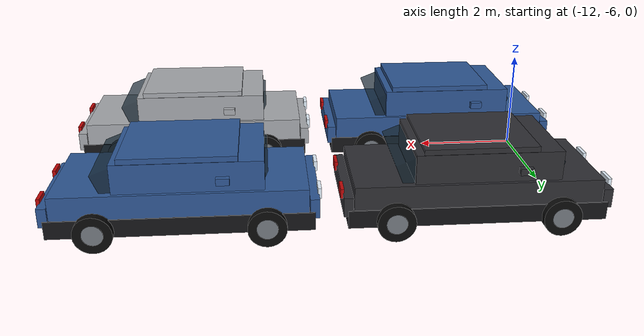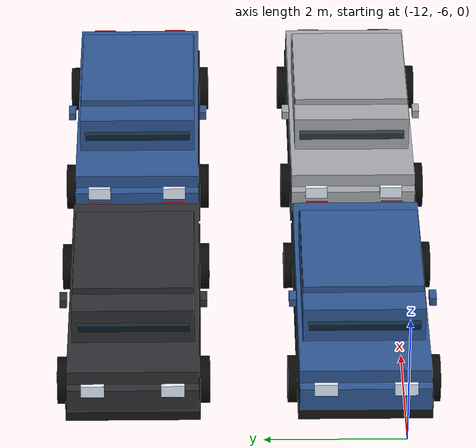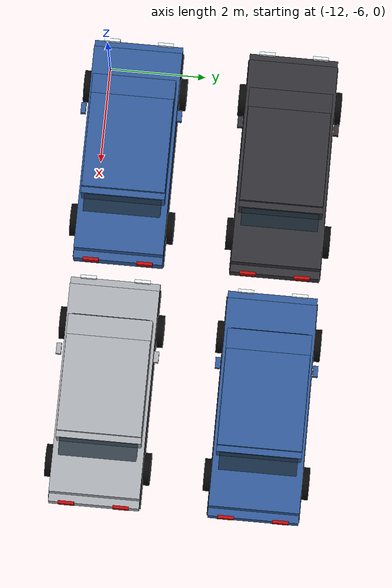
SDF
<sdf version="1.7">
 <world name="ev_car_carrier_deck_world">
  <model name="ev_01">
   <static>true</static>
   <pose>-10.0000 -5.4000 0.2000 0.0000 0.0000 0.0000</pose>
   <link name="vehicle">
    <collision name="chassis_collision">
     <pose>0.0000 0.0000 0.4800 0.0000 0.0000 0.0000</pose>
     <geometry><box><size>4.45 1.86 0.32</size></box></geometry>
    </collision>
    <visual name="chassis_visual">
     <pose>0.0000 0.0000 0.4800 0.0000 0.0000 0.0000</pose>
     <geometry><box><size>4.45 1.86 0.32</size></box></geometry>
     <material><ambient>0.08 0.08 0.09 1</ambient><diffuse>0.08 0.08 0.09 1</diffuse></material>
    </visual>
    <collision name="lower_body_collision">
     <pose>0.0000 0.0000 0.7800 0.0000 0.0000 0.0000</pose>
     <geometry><box><size>4.25 1.82 0.55</size></box></geometry>
    </collision>
    <visual name="lower_body_visual">
     <pose>0.0000 0.0000 0.7800 0.0000 0.0000 0.0000</pose>
     <geometry><box><size>4.25 1.82 0.55</size></box></geometry>
     <material><ambient>0.18 0.34 0.58 1</ambient><diffuse>0.18 0.34 0.58 1</diffuse></material>
    </visual>
    <collision name="cabin_collision">
     <pose>-0.1500 0.0000 1.2500 0.0000 0.0000 0.0000</pose>
     <geometry><box><size>2.5 1.7 0.65</size></box></geometry>
    </collision>
    <visual name="cabin_visual">
     <pose>-0.1500 0.0000 1.2500 0.0000 0.0000 0.0000</pose>
     <geometry><box><size>2.5 1.7 0.65</size></box></geometry>
     <material><ambient>0.18 0.34 0.58 1</ambient><diffuse>0.18 0.34 0.58 1</diffuse></material>
    </visual>
    <visual name="windshield_visual">
     <pose>-1.0500 0.0000 1.3000 0.0000 -0.4000 0.0000</pose>
     <geometry><box><size>0.7 1.56 0.42</size></box></geometry>
     <material><ambient>0.1 0.17 0.22 0.75</ambient><diffuse>0.1 0.17 0.22 0.75</diffuse></material>
    </visual>
    <visual name="rear_glass_visual">
     <pose>1.1000 0.0000 1.2800 0.0000 0.3800 0.0000</pose>
     <geometry><box><size>0.55 1.56 0.4</size></box></geometry>
     <material><ambient>0.1 0.17 0.22 0.75</ambient><diffuse>0.1 0.17 0.22 0.75</diffuse></material>
    </visual>
    <collision name="roof_collision">
     <pose>0.0000 0.0000 1.6200 0.0000 0.0000 0.0000</pose>
     <geometry><box><size>1.95 1.68 0.1</size></box></geometry>
    </collision>
    <visual name="roof_visual">
     <pose>0.0000 0.0000 1.6200 0.0000 0.0000 0.0000</pose>
     <geometry><box><size>1.95 1.68 0.1</size></box></geometry>
     <material><ambient>0.18 0.34 0.58 1</ambient><diffuse>0.18 0.34 0.58 1</diffuse></material>
    </visual>
    <collision name="battery_pack_collision">
     <pose>0.1000 0.0000 0.3000 0.0000 0.0000 0.0000</pose>
     <geometry><box><size>2.75 1.45 0.16</size></box></geometry>
    </collision>
    <visual name="battery_pack_visual">
     <pose>0.1000 0.0000 0.3000 0.0000 0.0000 0.0000</pose>
     <geometry><box><size>2.75 1.45 0.16</size></box></geometry>
     <material><ambient>0.16 0.18 0.19 1</ambient><diffuse>0.16 0.18 0.19 1</diffuse></material>
    </visual>
    <collision name="front_bumper_collision">
     <pose>-2.2200 0.0000 0.7000 0.0000 0.0000 0.0000</pose>
     <geometry><box><size>0.16 1.82 0.34</size></box></geometry>
    </collision>
    <visual name="front_bumper_visual">
     <pose>-2.2200 0.0000 0.7000 0.0000 0.0000 0.0000</pose>
     <geometry><box><size>0.16 1.82 0.34</size></box></geometry>
     <material><ambient>0.18 0.34 0.58 1</ambient><diffuse>0.18 0.34 0.58 1</diffuse></material>
    </visual>
    <collision name="rear_bumper_collision">
     <pose>2.2200 0.0000 0.7000 0.0000 0.0000 0.0000</pose>
     <geometry><box><size>0.16 1.82 0.34</size></box></geometry>
    </collision>
    <visual name="rear_bumper_visual">
     <pose>2.2200 0.0000 0.7000 0.0000 0.0000 0.0000</pose>
     <geometry><box><size>0.16 1.82 0.34</size></box></geometry>
     <material><ambient>0.18 0.34 0.58 1</ambient><diffuse>0.18 0.34 0.58 1</diffuse></material>
    </visual>
    <collision name="wheel_0_0_collision">
     <pose>-1.4200 -0.9600 0.4300 1.5708 0.0000 0.0000</pose>
     <geometry><cylinder><radius>0.33</radius><length>0.2</length></cylinder></geometry>
    </collision>
    <visual name="wheel_0_0_visual">
     <pose>-1.4200 -0.9600 0.4300 1.5708 0.0000 0.0000</pose>
     <geometry><cylinder><radius>0.33</radius><length>0.2</length></cylinder></geometry>
     <material><ambient>0.035 0.035 0.035 1</ambient><diffuse>0.035 0.035 0.035 1</diffuse></material>
    </visual>
    <visual name="rim_0_0_visual">
     <pose>-1.4200 -0.9600 0.4300 1.5708 0.0000 0.0000</pose>
     <geometry><cylinder><radius>0.18</radius><length>0.205</length></cylinder></geometry>
     <material><ambient>0.45 0.47 0.5 1</ambient><diffuse>0.45 0.47 0.5 1</diffuse></material>
    </visual>
    <collision name="wheel_0_1_collision">
     <pose>-1.4200 0.9600 0.4300 1.5708 0.0000 0.0000</pose>
     <geometry><cylinder><radius>0.33</radius><length>0.2</length></cylinder></geometry>
    </collision>
    <visual name="wheel_0_1_visual">
     <pose>-1.4200 0.9600 0.4300 1.5708 0.0000 0.0000</pose>
     <geometry><cylinder><radius>0.33</radius><length>0.2</length></cylinder></geometry>
     <material><ambient>0.035 0.035 0.035 1</ambient><diffuse>0.035 0.035 0.035 1</diffuse></material>
    </visual>
    <visual name="rim_0_1_visual">
     <pose>-1.4200 0.9600 0.4300 1.5708 0.0000 0.0000</pose>
     <geometry><cylinder><radius>0.18</radius><length>0.205</length></cylinder></geometry>
     <material><ambient>0.45 0.47 0.5 1</ambient><diffuse>0.45 0.47 0.5 1</diffuse></material>
    </visual>
    <collision name="wheel_1_0_collision">
     <pose>1.4200 -0.9600 0.4300 1.5708 0.0000 0.0000</pose>
     <geometry><cylinder><radius>0.33</radius><length>0.2</length></cylinder></geometry>
    </collision>
    <visual name="wheel_1_0_visual">
     <pose>1.4200 -0.9600 0.4300 1.5708 0.0000 0.0000</pose>
     <geometry><cylinder><radius>0.33</radius><length>0.2</length></cylinder></geometry>
     <material><ambient>0.035 0.035 0.035 1</ambient><diffuse>0.035 0.035 0.035 1</diffuse></material>
    </visual>
    <visual name="rim_1_0_visual">
     <pose>1.4200 -0.9600 0.4300 1.5708 0.0000 0.0000</pose>
     <geometry><cylinder><radius>0.18</radius><length>0.205</length></cylinder></geometry>
     <material><ambient>0.45 0.47 0.5 1</ambient><diffuse>0.45 0.47 0.5 1</diffuse></material>
    </visual>
    <collision name="wheel_1_1_collision">
     <pose>1.4200 0.9600 0.4300 1.5708 0.0000 0.0000</pose>
     <geometry><cylinder><radius>0.33</radius><length>0.2</length></cylinder></geometry>
    </collision>
    <visual name="wheel_1_1_visual">
     <pose>1.4200 0.9600 0.4300 1.5708 0.0000 0.0000</pose>
     <geometry><cylinder><radius>0.33</radius><length>0.2</length></cylinder></geometry>
     <material><ambient>0.035 0.035 0.035 1</ambient><diffuse>0.035 0.035 0.035 1</diffuse></material>
    </visual>
    <visual name="rim_1_1_visual">
     <pose>1.4200 0.9600 0.4300 1.5708 0.0000 0.0000</pose>
     <geometry><cylinder><radius>0.18</radius><length>0.205</length></cylinder></geometry>
     <material><ambient>0.45 0.47 0.5 1</ambient><diffuse>0.45 0.47 0.5 1</diffuse></material>
    </visual>
    <visual name="headlight_l_visual">
     <pose>-2.3100 -0.5500 0.8800 0.0000 0.0000 0.0000</pose>
     <geometry><box><size>0.06 0.32 0.18</size></box></geometry>
     <material><ambient>0.9 0.95 1.0 1</ambient><diffuse>0.9 0.95 1.0 1</diffuse></material>
    </visual>
    <visual name="headlight_r_visual">
     <pose>-2.3100 0.5500 0.8800 0.0000 0.0000 0.0000</pose>
     <geometry><box><size>0.06 0.32 0.18</size></box></geometry>
     <material><ambient>0.9 0.95 1.0 1</ambient><diffuse>0.9 0.95 1.0 1</diffuse></material>
    </visual>
    <visual name="taillight_l_visual">
     <pose>2.3100 -0.5500 0.8600 0.0000 0.0000 0.0000</pose>
     <geometry><box><size>0.06 0.32 0.17</size></box></geometry>
     <material><ambient>0.75 0.03 0.03 1</ambient><diffuse>0.75 0.03 0.03 1</diffuse></material>
    </visual>
    <visual name="taillight_r_visual">
     <pose>2.3100 0.5500 0.8600 0.0000 0.0000 0.0000</pose>
     <geometry><box><size>0.06 0.32 0.17</size></box></geometry>
     <material><ambient>0.75 0.03 0.03 1</ambient><diffuse>0.75 0.03 0.03 1</diffuse></material>
    </visual>
    <collision name="mirror_l_collision">
     <pose>-0.7200 -0.9800 1.3000 0.0000 0.0000 0.0000</pose>
     <geometry><box><size>0.22 0.1 0.12</size></box></geometry>
    </collision>
    <visual name="mirror_l_visual">
     <pose>-0.7200 -0.9800 1.3000 0.0000 0.0000 0.0000</pose>
     <geometry><box><size>0.22 0.1 0.12</size></box></geometry>
     <material><ambient>0.18 0.34 0.58 1</ambient><diffuse>0.18 0.34 0.58 1</diffuse></material>
    </visual>
    <collision name="mirror_r_collision">
     <pose>-0.7200 0.9800 1.3000 0.0000 0.0000 0.0000</pose>
     <geometry><box><size>0.22 0.1 0.12</size></box></geometry>
    </collision>
    <visual name="mirror_r_visual">
     <pose>-0.7200 0.9800 1.3000 0.0000 0.0000 0.0000</pose>
     <geometry><box><size>0.22 0.1 0.12</size></box></geometry>
     <material><ambient>0.18 0.34 0.58 1</ambient><diffuse>0.18 0.34 0.58 1</diffuse></material>
    </visual>
   </link>
  </model>
  <model name="ev_02">
   <static>true</static>
   <pose>-5.0000 -5.4000 0.2000 0.0000 0.0000 0.0000</pose>
   <link name="vehicle">
    <collision name="chassis_collision">
     <pose>0.0000 0.0000 0.4800 0.0000 0.0000 0.0000</pose>
     <geometry><box><size>4.45 1.86 0.32</size></box></geometry>
    </collision>
    <visual name="chassis_visual">
     <pose>0.0000 0.0000 0.4800 0.0000 0.0000 0.0000</pose>
     <geometry><box><size>4.45 1.86 0.32</size></box></geometry>
     <material><ambient>0.08 0.08 0.09 1</ambient><diffuse>0.08 0.08 0.09 1</diffuse></material>
    </visual>
    <collision name="lower_body_collision">
     <pose>0.0000 0.0000 0.7800 0.0000 0.0000 0.0000</pose>
     <geometry><box><size>4.25 1.82 0.55</size></box></geometry>
    </collision>
    <visual name="lower_body_visual">
     <pose>0.0000 0.0000 0.7800 0.0000 0.0000 0.0000</pose>
     <geometry><box><size>4.25 1.82 0.55</size></box></geometry>
     <material><ambient>0.65 0.66 0.68 1</ambient><diffuse>0.65 0.66 0.68 1</diffuse></material>
    </visual>
    <collision name="cabin_collision">
     <pose>-0.1500 0.0000 1.2500 0.0000 0.0000 0.0000</pose>
     <geometry><box><size>2.5 1.7 0.65</size></box></geometry>
    </collision>
    <visual name="cabin_visual">
     <pose>-0.1500 0.0000 1.2500 0.0000 0.0000 0.0000</pose>
     <geometry><box><size>2.5 1.7 0.65</size></box></geometry>
     <material><ambient>0.65 0.66 0.68 1</ambient><diffuse>0.65 0.66 0.68 1</diffuse></material>
    </visual>
    <visual name="windshield_visual">
     <pose>-1.0500 0.0000 1.3000 0.0000 -0.4000 0.0000</pose>
     <geometry><box><size>0.7 1.56 0.42</size></box></geometry>
     <material><ambient>0.1 0.17 0.22 0.75</ambient><diffuse>0.1 0.17 0.22 0.75</diffuse></material>
    </visual>
    <visual name="rear_glass_visual">
     <pose>1.1000 0.0000 1.2800 0.0000 0.3800 0.0000</pose>
     <geometry><box><size>0.55 1.56 0.4</size></box></geometry>
     <material><ambient>0.1 0.17 0.22 0.75</ambient><diffuse>0.1 0.17 0.22 0.75</diffuse></material>
    </visual>
    <collision name="roof_collision">
     <pose>0.0000 0.0000 1.6200 0.0000 0.0000 0.0000</pose>
     <geometry><box><size>1.95 1.68 0.1</size></box></geometry>
    </collision>
    <visual name="roof_visual">
     <pose>0.0000 0.0000 1.6200 0.0000 0.0000 0.0000</pose>
     <geometry><box><size>1.95 1.68 0.1</size></box></geometry>
     <material><ambient>0.65 0.66 0.68 1</ambient><diffuse>0.65 0.66 0.68 1</diffuse></material>
    </visual>
    <collision name="battery_pack_collision">
     <pose>0.1000 0.0000 0.3000 0.0000 0.0000 0.0000</pose>
     <geometry><box><size>2.75 1.45 0.16</size></box></geometry>
    </collision>
    <visual name="battery_pack_visual">
     <pose>0.1000 0.0000 0.3000 0.0000 0.0000 0.0000</pose>
     <geometry><box><size>2.75 1.45 0.16</size></box></geometry>
     <material><ambient>0.16 0.18 0.19 1</ambient><diffuse>0.16 0.18 0.19 1</diffuse></material>
    </visual>
    <collision name="front_bumper_collision">
     <pose>-2.2200 0.0000 0.7000 0.0000 0.0000 0.0000</pose>
     <geometry><box><size>0.16 1.82 0.34</size></box></geometry>
    </collision>
    <visual name="front_bumper_visual">
     <pose>-2.2200 0.0000 0.7000 0.0000 0.0000 0.0000</pose>
     <geometry><box><size>0.16 1.82 0.34</size></box></geometry>
     <material><ambient>0.65 0.66 0.68 1</ambient><diffuse>0.65 0.66 0.68 1</diffuse></material>
    </visual>
    <collision name="rear_bumper_collision">
     <pose>2.2200 0.0000 0.7000 0.0000 0.0000 0.0000</pose>
     <geometry><box><size>0.16 1.82 0.34</size></box></geometry>
    </collision>
    <visual name="rear_bumper_visual">
     <pose>2.2200 0.0000 0.7000 0.0000 0.0000 0.0000</pose>
     <geometry><box><size>0.16 1.82 0.34</size></box></geometry>
     <material><ambient>0.65 0.66 0.68 1</ambient><diffuse>0.65 0.66 0.68 1</diffuse></material>
    </visual>
    <collision name="wheel_0_0_collision">
     <pose>-1.4200 -0.9600 0.4300 1.5708 0.0000 0.0000</pose>
     <geometry><cylinder><radius>0.33</radius><length>0.2</length></cylinder></geometry>
    </collision>
    <visual name="wheel_0_0_visual">
     <pose>-1.4200 -0.9600 0.4300 1.5708 0.0000 0.0000</pose>
     <geometry><cylinder><radius>0.33</radius><length>0.2</length></cylinder></geometry>
     <material><ambient>0.035 0.035 0.035 1</ambient><diffuse>0.035 0.035 0.035 1</diffuse></material>
    </visual>
    <visual name="rim_0_0_visual">
     <pose>-1.4200 -0.9600 0.4300 1.5708 0.0000 0.0000</pose>
     <geometry><cylinder><radius>0.18</radius><length>0.205</length></cylinder></geometry>
     <material><ambient>0.45 0.47 0.5 1</ambient><diffuse>0.45 0.47 0.5 1</diffuse></material>
    </visual>
    <collision name="wheel_0_1_collision">
     <pose>-1.4200 0.9600 0.4300 1.5708 0.0000 0.0000</pose>
     <geometry><cylinder><radius>0.33</radius><length>0.2</length></cylinder></geometry>
    </collision>
    <visual name="wheel_0_1_visual">
     <pose>-1.4200 0.9600 0.4300 1.5708 0.0000 0.0000</pose>
     <geometry><cylinder><radius>0.33</radius><length>0.2</length></cylinder></geometry>
     <material><ambient>0.035 0.035 0.035 1</ambient><diffuse>0.035 0.035 0.035 1</diffuse></material>
    </visual>
    <visual name="rim_0_1_visual">
     <pose>-1.4200 0.9600 0.4300 1.5708 0.0000 0.0000</pose>
     <geometry><cylinder><radius>0.18</radius><length>0.205</length></cylinder></geometry>
     <material><ambient>0.45 0.47 0.5 1</ambient><diffuse>0.45 0.47 0.5 1</diffuse></material>
    </visual>
    <collision name="wheel_1_0_collision">
     <pose>1.4200 -0.9600 0.4300 1.5708 0.0000 0.0000</pose>
     <geometry><cylinder><radius>0.33</radius><length>0.2</length></cylinder></geometry>
    </collision>
    <visual name="wheel_1_0_visual">
     <pose>1.4200 -0.9600 0.4300 1.5708 0.0000 0.0000</pose>
     <geometry><cylinder><radius>0.33</radius><length>0.2</length></cylinder></geometry>
     <material><ambient>0.035 0.035 0.035 1</ambient><diffuse>0.035 0.035 0.035 1</diffuse></material>
    </visual>
    <visual name="rim_1_0_visual">
     <pose>1.4200 -0.9600 0.4300 1.5708 0.0000 0.0000</pose>
     <geometry><cylinder><radius>0.18</radius><length>0.205</length></cylinder></geometry>
     <material><ambient>0.45 0.47 0.5 1</ambient><diffuse>0.45 0.47 0.5 1</diffuse></material>
    </visual>
    <collision name="wheel_1_1_collision">
     <pose>1.4200 0.9600 0.4300 1.5708 0.0000 0.0000</pose>
     <geometry><cylinder><radius>0.33</radius><length>0.2</length></cylinder></geometry>
    </collision>
    <visual name="wheel_1_1_visual">
     <pose>1.4200 0.9600 0.4300 1.5708 0.0000 0.0000</pose>
     <geometry><cylinder><radius>0.33</radius><length>0.2</length></cylinder></geometry>
     <material><ambient>0.035 0.035 0.035 1</ambient><diffuse>0.035 0.035 0.035 1</diffuse></material>
    </visual>
    <visual name="rim_1_1_visual">
     <pose>1.4200 0.9600 0.4300 1.5708 0.0000 0.0000</pose>
     <geometry><cylinder><radius>0.18</radius><length>0.205</length></cylinder></geometry>
     <material><ambient>0.45 0.47 0.5 1</ambient><diffuse>0.45 0.47 0.5 1</diffuse></material>
    </visual>
    <visual name="headlight_l_visual">
     <pose>-2.3100 -0.5500 0.8800 0.0000 0.0000 0.0000</pose>
     <geometry><box><size>0.06 0.32 0.18</size></box></geometry>
     <material><ambient>0.9 0.95 1.0 1</ambient><diffuse>0.9 0.95 1.0 1</diffuse></material>
    </visual>
    <visual name="headlight_r_visual">
     <pose>-2.3100 0.5500 0.8800 0.0000 0.0000 0.0000</pose>
     <geometry><box><size>0.06 0.32 0.18</size></box></geometry>
     <material><ambient>0.9 0.95 1.0 1</ambient><diffuse>0.9 0.95 1.0 1</diffuse></material>
    </visual>
    <visual name="taillight_l_visual">
     <pose>2.3100 -0.5500 0.8600 0.0000 0.0000 0.0000</pose>
     <geometry><box><size>0.06 0.32 0.17</size></box></geometry>
     <material><ambient>0.75 0.03 0.03 1</ambient><diffuse>0.75 0.03 0.03 1</diffuse></material>
    </visual>
    <visual name="taillight_r_visual">
     <pose>2.3100 0.5500 0.8600 0.0000 0.0000 0.0000</pose>
     <geometry><box><size>0.06 0.32 0.17</size></box></geometry>
     <material><ambient>0.75 0.03 0.03 1</ambient><diffuse>0.75 0.03 0.03 1</diffuse></material>
    </visual>
    <collision name="mirror_l_collision">
     <pose>-0.7200 -0.9800 1.3000 0.0000 0.0000 0.0000</pose>
     <geometry><box><size>0.22 0.1 0.12</size></box></geometry>
    </collision>
    <visual name="mirror_l_visual">
     <pose>-0.7200 -0.9800 1.3000 0.0000 0.0000 0.0000</pose>
     <geometry><box><size>0.22 0.1 0.12</size></box></geometry>
     <material><ambient>0.65 0.66 0.68 1</ambient><diffuse>0.65 0.66 0.68 1</diffuse></material>
    </visual>
    <collision name="mirror_r_collision">
     <pose>-0.7200 0.9800 1.3000 0.0000 0.0000 0.0000</pose>
     <geometry><box><size>0.22 0.1 0.12</size></box></geometry>
    </collision>
    <visual name="mirror_r_visual">
     <pose>-0.7200 0.9800 1.3000 0.0000 0.0000 0.0000</pose>
     <geometry><box><size>0.22 0.1 0.12</size></box></geometry>
     <material><ambient>0.65 0.66 0.68 1</ambient><diffuse>0.65 0.66 0.68 1</diffuse></material>
    </visual>
   </link>
  </model>
  <model name="ev_06">
   <static>true</static>
   <pose>-10.0000 -2.2000 0.2000 0.0000 0.0000 0.0000</pose>
   <link name="vehicle">
    <collision name="chassis_collision">
     <pose>0.0000 0.0000 0.4800 0.0000 0.0000 0.0000</pose>
     <geometry><box><size>4.45 1.86 0.32</size></box></geometry>
    </collision>
    <visual name="chassis_visual">
     <pose>0.0000 0.0000 0.4800 0.0000 0.0000 0.0000</pose>
     <geometry><box><size>4.45 1.86 0.32</size></box></geometry>
     <material><ambient>0.08 0.08 0.09 1</ambient><diffuse>0.08 0.08 0.09 1</diffuse></material>
    </visual>
    <collision name="lower_body_collision">
     <pose>0.0000 0.0000 0.7800 0.0000 0.0000 0.0000</pose>
     <geometry><box><size>4.25 1.82 0.55</size></box></geometry>
    </collision>
    <visual name="lower_body_visual">
     <pose>0.0000 0.0000 0.7800 0.0000 0.0000 0.0000</pose>
     <geometry><box><size>4.25 1.82 0.55</size></box></geometry>
     <material><ambient>0.18 0.18 0.2 1</ambient><diffuse>0.18 0.18 0.2 1</diffuse></material>
    </visual>
    <collision name="cabin_collision">
     <pose>-0.1500 0.0000 1.2500 0.0000 0.0000 0.0000</pose>
     <geometry><box><size>2.5 1.7 0.65</size></box></geometry>
    </collision>
    <visual name="cabin_visual">
     <pose>-0.1500 0.0000 1.2500 0.0000 0.0000 0.0000</pose>
     <geometry><box><size>2.5 1.7 0.65</size></box></geometry>
     <material><ambient>0.18 0.18 0.2 1</ambient><diffuse>0.18 0.18 0.2 1</diffuse></material>
    </visual>
    <visual name="windshield_visual">
     <pose>-1.0500 0.0000 1.3000 0.0000 -0.4000 0.0000</pose>
     <geometry><box><size>0.7 1.56 0.42</size></box></geometry>
     <material><ambient>0.1 0.17 0.22 0.75</ambient><diffuse>0.1 0.17 0.22 0.75</diffuse></material>
    </visual>
    <visual name="rear_glass_visual">
     <pose>1.1000 0.0000 1.2800 0.0000 0.3800 0.0000</pose>
     <geometry><box><size>0.55 1.56 0.4</size></box></geometry>
     <material><ambient>0.1 0.17 0.22 0.75</ambient><diffuse>0.1 0.17 0.22 0.75</diffuse></material>
    </visual>
    <collision name="roof_collision">
     <pose>0.0000 0.0000 1.6200 0.0000 0.0000 0.0000</pose>
     <geometry><box><size>1.95 1.68 0.1</size></box></geometry>
    </collision>
    <visual name="roof_visual">
     <pose>0.0000 0.0000 1.6200 0.0000 0.0000 0.0000</pose>
     <geometry><box><size>1.95 1.68 0.1</size></box></geometry>
     <material><ambient>0.18 0.18 0.2 1</ambient><diffuse>0.18 0.18 0.2 1</diffuse></material>
    </visual>
    <collision name="battery_pack_collision">
     <pose>0.1000 0.0000 0.3000 0.0000 0.0000 0.0000</pose>
     <geometry><box><size>2.75 1.45 0.16</size></box></geometry>
    </collision>
    <visual name="battery_pack_visual">
     <pose>0.1000 0.0000 0.3000 0.0000 0.0000 0.0000</pose>
     <geometry><box><size>2.75 1.45 0.16</size></box></geometry>
     <material><ambient>0.16 0.18 0.19 1</ambient><diffuse>0.16 0.18 0.19 1</diffuse></material>
    </visual>
    <collision name="front_bumper_collision">
     <pose>-2.2200 0.0000 0.7000 0.0000 0.0000 0.0000</pose>
     <geometry><box><size>0.16 1.82 0.34</size></box></geometry>
    </collision>
    <visual name="front_bumper_visual">
     <pose>-2.2200 0.0000 0.7000 0.0000 0.0000 0.0000</pose>
     <geometry><box><size>0.16 1.82 0.34</size></box></geometry>
     <material><ambient>0.18 0.18 0.2 1</ambient><diffuse>0.18 0.18 0.2 1</diffuse></material>
    </visual>
    <collision name="rear_bumper_collision">
     <pose>2.2200 0.0000 0.7000 0.0000 0.0000 0.0000</pose>
     <geometry><box><size>0.16 1.82 0.34</size></box></geometry>
    </collision>
    <visual name="rear_bumper_visual">
     <pose>2.2200 0.0000 0.7000 0.0000 0.0000 0.0000</pose>
     <geometry><box><size>0.16 1.82 0.34</size></box></geometry>
     <material><ambient>0.18 0.18 0.2 1</ambient><diffuse>0.18 0.18 0.2 1</diffuse></material>
    </visual>
    <collision name="wheel_0_0_collision">
     <pose>-1.4200 -0.9600 0.4300 1.5708 0.0000 0.0000</pose>
     <geometry><cylinder><radius>0.33</radius><length>0.2</length></cylinder></geometry>
    </collision>
    <visual name="wheel_0_0_visual">
     <pose>-1.4200 -0.9600 0.4300 1.5708 0.0000 0.0000</pose>
     <geometry><cylinder><radius>0.33</radius><length>0.2</length></cylinder></geometry>
     <material><ambient>0.035 0.035 0.035 1</ambient><diffuse>0.035 0.035 0.035 1</diffuse></material>
    </visual>
    <visual name="rim_0_0_visual">
     <pose>-1.4200 -0.9600 0.4300 1.5708 0.0000 0.0000</pose>
     <geometry><cylinder><radius>0.18</radius><length>0.205</length></cylinder></geometry>
     <material><ambient>0.45 0.47 0.5 1</ambient><diffuse>0.45 0.47 0.5 1</diffuse></material>
    </visual>
    <collision name="wheel_0_1_collision">
     <pose>-1.4200 0.9600 0.4300 1.5708 0.0000 0.0000</pose>
     <geometry><cylinder><radius>0.33</radius><length>0.2</length></cylinder></geometry>
    </collision>
    <visual name="wheel_0_1_visual">
     <pose>-1.4200 0.9600 0.4300 1.5708 0.0000 0.0000</pose>
     <geometry><cylinder><radius>0.33</radius><length>0.2</length></cylinder></geometry>
     <material><ambient>0.035 0.035 0.035 1</ambient><diffuse>0.035 0.035 0.035 1</diffuse></material>
    </visual>
    <visual name="rim_0_1_visual">
     <pose>-1.4200 0.9600 0.4300 1.5708 0.0000 0.0000</pose>
     <geometry><cylinder><radius>0.18</radius><length>0.205</length></cylinder></geometry>
     <material><ambient>0.45 0.47 0.5 1</ambient><diffuse>0.45 0.47 0.5 1</diffuse></material>
    </visual>
    <collision name="wheel_1_0_collision">
     <pose>1.4200 -0.9600 0.4300 1.5708 0.0000 0.0000</pose>
     <geometry><cylinder><radius>0.33</radius><length>0.2</length></cylinder></geometry>
    </collision>
    <visual name="wheel_1_0_visual">
     <pose>1.4200 -0.9600 0.4300 1.5708 0.0000 0.0000</pose>
     <geometry><cylinder><radius>0.33</radius><length>0.2</length></cylinder></geometry>
     <material><ambient>0.035 0.035 0.035 1</ambient><diffuse>0.035 0.035 0.035 1</diffuse></material>
    </visual>
    <visual name="rim_1_0_visual">
     <pose>1.4200 -0.9600 0.4300 1.5708 0.0000 0.0000</pose>
     <geometry><cylinder><radius>0.18</radius><length>0.205</length></cylinder></geometry>
     <material><ambient>0.45 0.47 0.5 1</ambient><diffuse>0.45 0.47 0.5 1</diffuse></material>
    </visual>
    <collision name="wheel_1_1_collision">
     <pose>1.4200 0.9600 0.4300 1.5708 0.0000 0.0000</pose>
     <geometry><cylinder><radius>0.33</radius><length>0.2</length></cylinder></geometry>
    </collision>
    <visual name="wheel_1_1_visual">
     <pose>1.4200 0.9600 0.4300 1.5708 0.0000 0.0000</pose>
     <geometry><cylinder><radius>0.33</radius><length>0.2</length></cylinder></geometry>
     <material><ambient>0.035 0.035 0.035 1</ambient><diffuse>0.035 0.035 0.035 1</diffuse></material>
    </visual>
    <visual name="rim_1_1_visual">
     <pose>1.4200 0.9600 0.4300 1.5708 0.0000 0.0000</pose>
     <geometry><cylinder><radius>0.18</radius><length>0.205</length></cylinder></geometry>
     <material><ambient>0.45 0.47 0.5 1</ambient><diffuse>0.45 0.47 0.5 1</diffuse></material>
    </visual>
    <visual name="headlight_l_visual">
     <pose>-2.3100 -0.5500 0.8800 0.0000 0.0000 0.0000</pose>
     <geometry><box><size>0.06 0.32 0.18</size></box></geometry>
     <material><ambient>0.9 0.95 1.0 1</ambient><diffuse>0.9 0.95 1.0 1</diffuse></material>
    </visual>
    <visual name="headlight_r_visual">
     <pose>-2.3100 0.5500 0.8800 0.0000 0.0000 0.0000</pose>
     <geometry><box><size>0.06 0.32 0.18</size></box></geometry>
     <material><ambient>0.9 0.95 1.0 1</ambient><diffuse>0.9 0.95 1.0 1</diffuse></material>
    </visual>
    <visual name="taillight_l_visual">
     <pose>2.3100 -0.5500 0.8600 0.0000 0.0000 0.0000</pose>
     <geometry><box><size>0.06 0.32 0.17</size></box></geometry>
     <material><ambient>0.75 0.03 0.03 1</ambient><diffuse>0.75 0.03 0.03 1</diffuse></material>
    </visual>
    <visual name="taillight_r_visual">
     <pose>2.3100 0.5500 0.8600 0.0000 0.0000 0.0000</pose>
     <geometry><box><size>0.06 0.32 0.17</size></box></geometry>
     <material><ambient>0.75 0.03 0.03 1</ambient><diffuse>0.75 0.03 0.03 1</diffuse></material>
    </visual>
    <collision name="mirror_l_collision">
     <pose>-0.7200 -0.9800 1.3000 0.0000 0.0000 0.0000</pose>
     <geometry><box><size>0.22 0.1 0.12</size></box></geometry>
    </collision>
    <visual name="mirror_l_visual">
     <pose>-0.7200 -0.9800 1.3000 0.0000 0.0000 0.0000</pose>
     <geometry><box><size>0.22 0.1 0.12</size></box></geometry>
     <material><ambient>0.18 0.18 0.2 1</ambient><diffuse>0.18 0.18 0.2 1</diffuse></material>
    </visual>
    <collision name="mirror_r_collision">
     <pose>-0.7200 0.9800 1.3000 0.0000 0.0000 0.0000</pose>
     <geometry><box><size>0.22 0.1 0.12</size></box></geometry>
    </collision>
    <visual name="mirror_r_visual">
     <pose>-0.7200 0.9800 1.3000 0.0000 0.0000 0.0000</pose>
     <geometry><box><size>0.22 0.1 0.12</size></box></geometry>
     <material><ambient>0.18 0.18 0.2 1</ambient><diffuse>0.18 0.18 0.2 1</diffuse></material>
    </visual>
   </link>
  </model>
  <model name="ev_07">
   <static>true</static>
   <pose>-5.0000 -2.2000 0.2000 0.0000 0.0000 0.0000</pose>
   <link name="vehicle">
    <collision name="chassis_collision">
     <pose>0.0000 0.0000 0.4800 0.0000 0.0000 0.0000</pose>
     <geometry><box><size>4.45 1.86 0.32</size></box></geometry>
    </collision>
    <visual name="chassis_visual">
     <pose>0.0000 0.0000 0.4800 0.0000 0.0000 0.0000</pose>
     <geometry><box><size>4.45 1.86 0.32</size></box></geometry>
     <material><ambient>0.08 0.08 0.09 1</ambient><diffuse>0.08 0.08 0.09 1</diffuse></material>
    </visual>
    <collision name="lower_body_collision">
     <pose>0.0000 0.0000 0.7800 0.0000 0.0000 0.0000</pose>
     <geometry><box><size>4.25 1.82 0.55</size></box></geometry>
    </collision>
    <visual name="lower_body_visual">
     <pose>0.0000 0.0000 0.7800 0.0000 0.0000 0.0000</pose>
     <geometry><box><size>4.25 1.82 0.55</size></box></geometry>
     <material><ambient>0.18 0.34 0.58 1</ambient><diffuse>0.18 0.34 0.58 1</diffuse></material>
    </visual>
    <collision name="cabin_collision">
     <pose>-0.1500 0.0000 1.2500 0.0000 0.0000 0.0000</pose>
     <geometry><box><size>2.5 1.7 0.65</size></box></geometry>
    </collision>
    <visual name="cabin_visual">
     <pose>-0.1500 0.0000 1.2500 0.0000 0.0000 0.0000</pose>
     <geometry><box><size>2.5 1.7 0.65</size></box></geometry>
     <material><ambient>0.18 0.34 0.58 1</ambient><diffuse>0.18 0.34 0.58 1</diffuse></material>
    </visual>
    <visual name="windshield_visual">
     <pose>-1.0500 0.0000 1.3000 0.0000 -0.4000 0.0000</pose>
     <geometry><box><size>0.7 1.56 0.42</size></box></geometry>
     <material><ambient>0.1 0.17 0.22 0.75</ambient><diffuse>0.1 0.17 0.22 0.75</diffuse></material>
    </visual>
    <visual name="rear_glass_visual">
     <pose>1.1000 0.0000 1.2800 0.0000 0.3800 0.0000</pose>
     <geometry><box><size>0.55 1.56 0.4</size></box></geometry>
     <material><ambient>0.1 0.17 0.22 0.75</ambient><diffuse>0.1 0.17 0.22 0.75</diffuse></material>
    </visual>
    <collision name="roof_collision">
     <pose>0.0000 0.0000 1.6200 0.0000 0.0000 0.0000</pose>
     <geometry><box><size>1.95 1.68 0.1</size></box></geometry>
    </collision>
    <visual name="roof_visual">
     <pose>0.0000 0.0000 1.6200 0.0000 0.0000 0.0000</pose>
     <geometry><box><size>1.95 1.68 0.1</size></box></geometry>
     <material><ambient>0.18 0.34 0.58 1</ambient><diffuse>0.18 0.34 0.58 1</diffuse></material>
    </visual>
    <collision name="battery_pack_collision">
     <pose>0.1000 0.0000 0.3000 0.0000 0.0000 0.0000</pose>
     <geometry><box><size>2.75 1.45 0.16</size></box></geometry>
    </collision>
    <visual name="battery_pack_visual">
     <pose>0.1000 0.0000 0.3000 0.0000 0.0000 0.0000</pose>
     <geometry><box><size>2.75 1.45 0.16</size></box></geometry>
     <material><ambient>0.16 0.18 0.19 1</ambient><diffuse>0.16 0.18 0.19 1</diffuse></material>
    </visual>
    <collision name="front_bumper_collision">
     <pose>-2.2200 0.0000 0.7000 0.0000 0.0000 0.0000</pose>
     <geometry><box><size>0.16 1.82 0.34</size></box></geometry>
    </collision>
    <visual name="front_bumper_visual">
     <pose>-2.2200 0.0000 0.7000 0.0000 0.0000 0.0000</pose>
     <geometry><box><size>0.16 1.82 0.34</size></box></geometry>
     <material><ambient>0.18 0.34 0.58 1</ambient><diffuse>0.18 0.34 0.58 1</diffuse></material>
    </visual>
    <collision name="rear_bumper_collision">
     <pose>2.2200 0.0000 0.7000 0.0000 0.0000 0.0000</pose>
     <geometry><box><size>0.16 1.82 0.34</size></box></geometry>
    </collision>
    <visual name="rear_bumper_visual">
     <pose>2.2200 0.0000 0.7000 0.0000 0.0000 0.0000</pose>
     <geometry><box><size>0.16 1.82 0.34</size></box></geometry>
     <material><ambient>0.18 0.34 0.58 1</ambient><diffuse>0.18 0.34 0.58 1</diffuse></material>
    </visual>
    <collision name="wheel_0_0_collision">
     <pose>-1.4200 -0.9600 0.4300 1.5708 0.0000 0.0000</pose>
     <geometry><cylinder><radius>0.33</radius><length>0.2</length></cylinder></geometry>
    </collision>
    <visual name="wheel_0_0_visual">
     <pose>-1.4200 -0.9600 0.4300 1.5708 0.0000 0.0000</pose>
     <geometry><cylinder><radius>0.33</radius><length>0.2</length></cylinder></geometry>
     <material><ambient>0.035 0.035 0.035 1</ambient><diffuse>0.035 0.035 0.035 1</diffuse></material>
    </visual>
    <visual name="rim_0_0_visual">
     <pose>-1.4200 -0.9600 0.4300 1.5708 0.0000 0.0000</pose>
     <geometry><cylinder><radius>0.18</radius><length>0.205</length></cylinder></geometry>
     <material><ambient>0.45 0.47 0.5 1</ambient><diffuse>0.45 0.47 0.5 1</diffuse></material>
    </visual>
    <collision name="wheel_0_1_collision">
     <pose>-1.4200 0.9600 0.4300 1.5708 0.0000 0.0000</pose>
     <geometry><cylinder><radius>0.33</radius><length>0.2</length></cylinder></geometry>
    </collision>
    <visual name="wheel_0_1_visual">
     <pose>-1.4200 0.9600 0.4300 1.5708 0.0000 0.0000</pose>
     <geometry><cylinder><radius>0.33</radius><length>0.2</length></cylinder></geometry>
     <material><ambient>0.035 0.035 0.035 1</ambient><diffuse>0.035 0.035 0.035 1</diffuse></material>
    </visual>
    <visual name="rim_0_1_visual">
     <pose>-1.4200 0.9600 0.4300 1.5708 0.0000 0.0000</pose>
     <geometry><cylinder><radius>0.18</radius><length>0.205</length></cylinder></geometry>
     <material><ambient>0.45 0.47 0.5 1</ambient><diffuse>0.45 0.47 0.5 1</diffuse></material>
    </visual>
    <collision name="wheel_1_0_collision">
     <pose>1.4200 -0.9600 0.4300 1.5708 0.0000 0.0000</pose>
     <geometry><cylinder><radius>0.33</radius><length>0.2</length></cylinder></geometry>
    </collision>
    <visual name="wheel_1_0_visual">
     <pose>1.4200 -0.9600 0.4300 1.5708 0.0000 0.0000</pose>
     <geometry><cylinder><radius>0.33</radius><length>0.2</length></cylinder></geometry>
     <material><ambient>0.035 0.035 0.035 1</ambient><diffuse>0.035 0.035 0.035 1</diffuse></material>
    </visual>
    <visual name="rim_1_0_visual">
     <pose>1.4200 -0.9600 0.4300 1.5708 0.0000 0.0000</pose>
     <geometry><cylinder><radius>0.18</radius><length>0.205</length></cylinder></geometry>
     <material><ambient>0.45 0.47 0.5 1</ambient><diffuse>0.45 0.47 0.5 1</diffuse></material>
    </visual>
    <collision name="wheel_1_1_collision">
     <pose>1.4200 0.9600 0.4300 1.5708 0.0000 0.0000</pose>
     <geometry><cylinder><radius>0.33</radius><length>0.2</length></cylinder></geometry>
    </collision>
    <visual name="wheel_1_1_visual">
     <pose>1.4200 0.9600 0.4300 1.5708 0.0000 0.0000</pose>
     <geometry><cylinder><radius>0.33</radius><length>0.2</length></cylinder></geometry>
     <material><ambient>0.035 0.035 0.035 1</ambient><diffuse>0.035 0.035 0.035 1</diffuse></material>
    </visual>
    <visual name="rim_1_1_visual">
     <pose>1.4200 0.9600 0.4300 1.5708 0.0000 0.0000</pose>
     <geometry><cylinder><radius>0.18</radius><length>0.205</length></cylinder></geometry>
     <material><ambient>0.45 0.47 0.5 1</ambient><diffuse>0.45 0.47 0.5 1</diffuse></material>
    </visual>
    <visual name="headlight_l_visual">
     <pose>-2.3100 -0.5500 0.8800 0.0000 0.0000 0.0000</pose>
     <geometry><box><size>0.06 0.32 0.18</size></box></geometry>
     <material><ambient>0.9 0.95 1.0 1</ambient><diffuse>0.9 0.95 1.0 1</diffuse></material>
    </visual>
    <visual name="headlight_r_visual">
     <pose>-2.3100 0.5500 0.8800 0.0000 0.0000 0.0000</pose>
     <geometry><box><size>0.06 0.32 0.18</size></box></geometry>
     <material><ambient>0.9 0.95 1.0 1</ambient><diffuse>0.9 0.95 1.0 1</diffuse></material>
    </visual>
    <visual name="taillight_l_visual">
     <pose>2.3100 -0.5500 0.8600 0.0000 0.0000 0.0000</pose>
     <geometry><box><size>0.06 0.32 0.17</size></box></geometry>
     <material><ambient>0.75 0.03 0.03 1</ambient><diffuse>0.75 0.03 0.03 1</diffuse></material>
    </visual>
    <visual name="taillight_r_visual">
     <pose>2.3100 0.5500 0.8600 0.0000 0.0000 0.0000</pose>
     <geometry><box><size>0.06 0.32 0.17</size></box></geometry>
     <material><ambient>0.75 0.03 0.03 1</ambient><diffuse>0.75 0.03 0.03 1</diffuse></material>
    </visual>
    <collision name="mirror_l_collision">
     <pose>-0.7200 -0.9800 1.3000 0.0000 0.0000 0.0000</pose>
     <geometry><box><size>0.22 0.1 0.12</size></box></geometry>
    </collision>
    <visual name="mirror_l_visual">
     <pose>-0.7200 -0.9800 1.3000 0.0000 0.0000 0.0000</pose>
     <geometry><box><size>0.22 0.1 0.12</size></box></geometry>
     <material><ambient>0.18 0.34 0.58 1</ambient><diffuse>0.18 0.34 0.58 1</diffuse></material>
    </visual>
    <collision name="mirror_r_collision">
     <pose>-0.7200 0.9800 1.3000 0.0000 0.0000 0.0000</pose>
     <geometry><box><size>0.22 0.1 0.12</size></box></geometry>
    </collision>
    <visual name="mirror_r_visual">
     <pose>-0.7200 0.9800 1.3000 0.0000 0.0000 0.0000</pose>
     <geometry><box><size>0.22 0.1 0.12</size></box></geometry>
     <material><ambient>0.18 0.34 0.58 1</ambient><diffuse>0.18 0.34 0.58 1</diffuse></material>
    </visual>
   </link>
  </model>
 </world>
</sdf>
